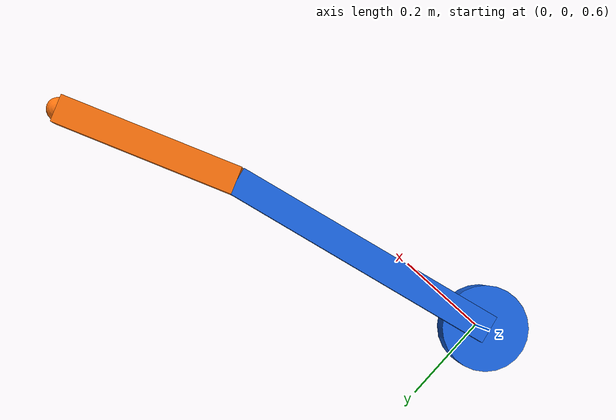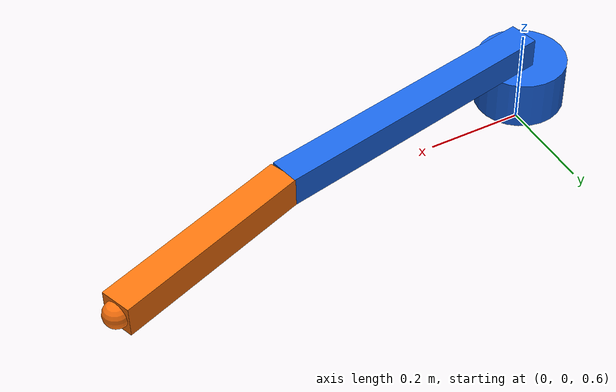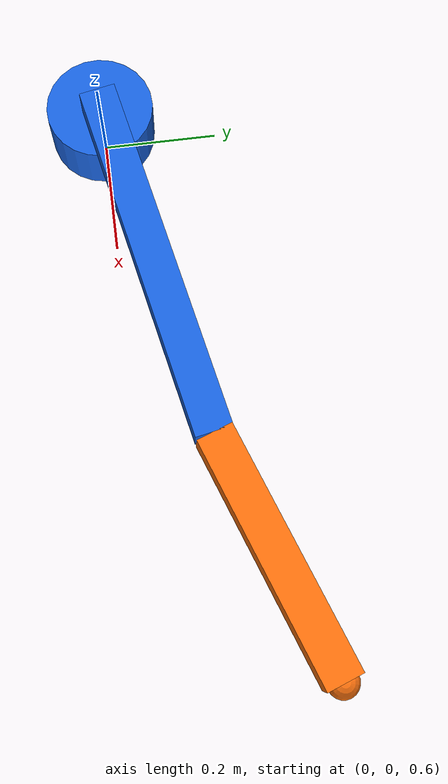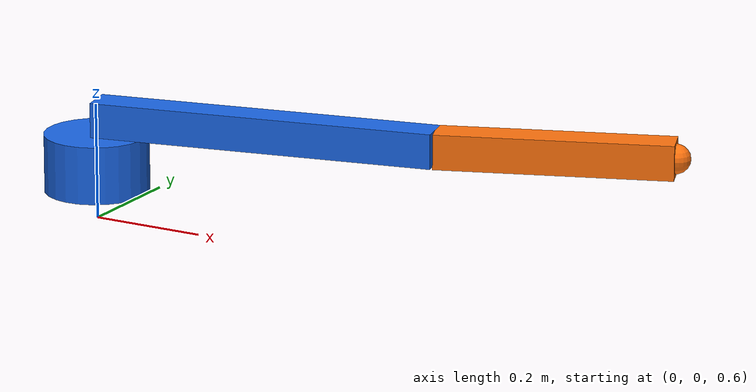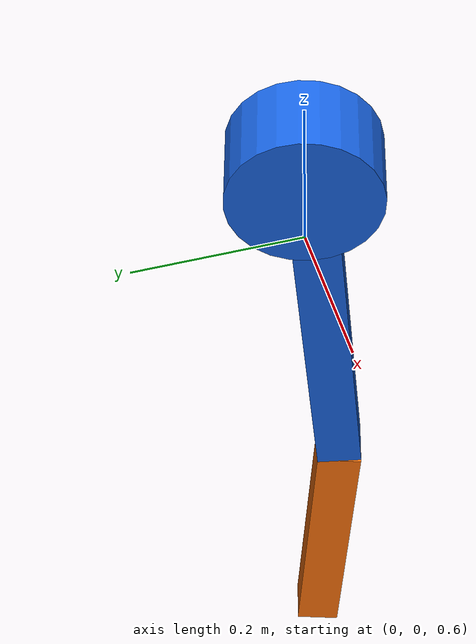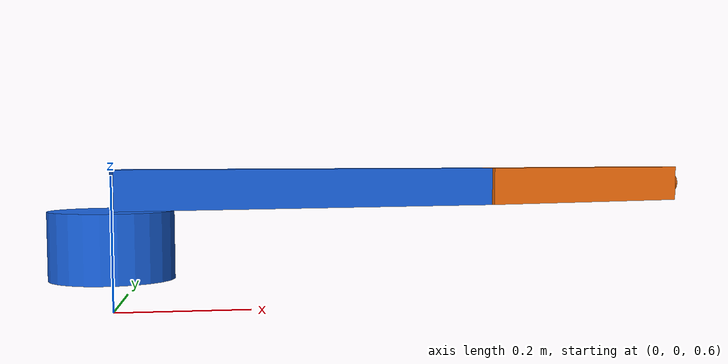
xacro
<?xml version="1.0"?>
<robot name="gazeboteach_tf_2r" xmlns:xacro="http://www.ros.org/wiki/xacro">
  <xacro:arg name="length1" default="0.6"/><xacro:arg name="preserve_tool" default="true"/>
  <xacro:arg name="joint_state_rate" default="20"/>
  <xacro:property name="l1" value="$(arg length1)"/><xacro:property name="l2" value="0.4"/>
  <xacro:include filename="$(find gazeboteach_l24)/urdf/beam_macros.xacro"/>
  <material name="Blue"><color rgba="0.1 0.4 0.9 1"/></material><material name="Orange"><color rgba="1 0.45 0.05 1"/></material>
  <link name="world"/>
  <link name="base_link">
    <visual name="base_visual"><geometry><cylinder radius="0.09" length="0.1"/></geometry><material name="Blue"/></visual>
    <collision name="base_collision"><geometry><cylinder radius="0.09" length="0.1"/></geometry></collision>
    <inertial><mass value="1"/><inertia ixx="0.0028583333333333334" iyy="0.0028583333333333334" izz="0.00405" ixy="0" ixz="0" iyz="0"/></inertial>
  </link>
  <gazebo reference="base_link"><gravity>false</gravity><selfCollide>false</selfCollide><material>Gazebo/Blue</material></gazebo>
  <joint name="lesson24_world_fixed" type="fixed"><parent link="world"/><child link="base_link"/><origin xyz="0 0 0.7" rpy="0 0 0.2"/></joint>
  <xacro:beam name="arm1" length="${l1}" mass="1.0" color="Blue"/>
  <xacro:beam name="arm2" length="${l2}" mass="0.5" color="Orange"/>
  <joint name="lesson24_shoulder" type="revolute"><parent link="base_link"/><child link="arm1"/><origin xyz="0 0 0.08" rpy="0 0 0"/><axis xyz="0 0 1"/><limit lower="-1.4" upper="1.4" effort="0.5" velocity="2"/><dynamics damping="0.03" friction="0"/></joint>
  <joint name="lesson24_elbow" type="revolute"><parent link="arm1"/><child link="arm2"/><origin xyz="${l1} 0 0" rpy="0 0 0.15"/><axis xyz="0 0 1"/><limit lower="-1.2" upper="1.2" effort="0.5" velocity="2"/><dynamics damping="0.03" friction="0"/></joint>
  <link name="tool_link">
    <visual name="tool_visual"><geometry><sphere radius="0.025"/></geometry><material name="Orange"/></visual>
    <collision name="tool_collision"><geometry><sphere radius="0.025"/></geometry></collision>
    <inertial><mass value="0.02"/><inertia ixx="0.000005" iyy="0.000005" izz="0.000005" ixy="0" ixz="0" iyz="0"/></inertial>
  </link>
  <gazebo reference="tool_link"><gravity>false</gravity><selfCollide>false</selfCollide><material>Gazebo/Orange</material></gazebo>
  <joint name="lesson24_tool_fixed" type="fixed"><parent link="arm2"/><child link="tool_link"/><origin xyz="${l2} 0 0" rpy="0 0 0"/></joint>
  <xacro:if value="$(arg preserve_tool)"><gazebo reference="lesson24_tool_fixed"><preserveFixedJoint>true</preserveFixedJoint></gazebo></xacro:if>
  <gazebo><plugin name="lesson24_actual_joint_states" filename="libgazebo_ros_joint_state_publisher.so">
    <robotNamespace>/lesson24</robotNamespace>
    <jointName>lesson24_shoulder,lesson24_elbow</jointName>
    <updateRate>$(arg joint_state_rate)</updateRate>
  </plugin></gazebo>
</robot>

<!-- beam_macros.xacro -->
<robot xmlns:xacro="http://www.ros.org/wiki/xacro">
  <xacro:macro name="beam" params="name length mass color">
    <link name="${name}">
      <visual name="${name}_visual"><origin xyz="${length/2} 0 0"/><geometry><box size="${length} 0.06 0.06"/></geometry><material name="${color}"/></visual>
      <collision name="${name}_collision"><origin xyz="${length/2} 0 0"/><geometry><box size="${length} 0.06 0.06"/></geometry></collision>
      <inertial><origin xyz="${length/2} 0 0"/><mass value="${mass}"/>
        <inertia ixx="${mass*(0.06**2+0.06**2)/12}" iyy="${mass*(length**2+0.06**2)/12}" izz="${mass*(length**2+0.06**2)/12}" ixy="0" ixz="0" iyz="0"/>
      </inertial>
    </link>
    <gazebo reference="${name}"><gravity>false</gravity><selfCollide>false</selfCollide><material>Gazebo/${color}</material></gazebo>
  </xacro:macro>
</robot>
